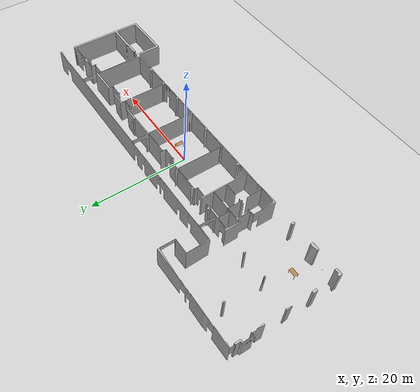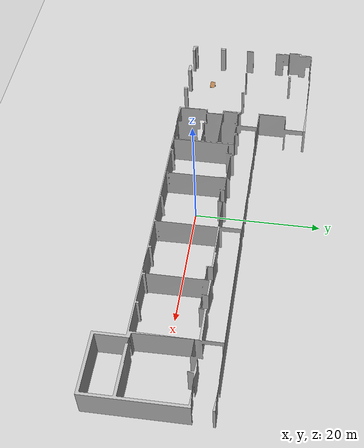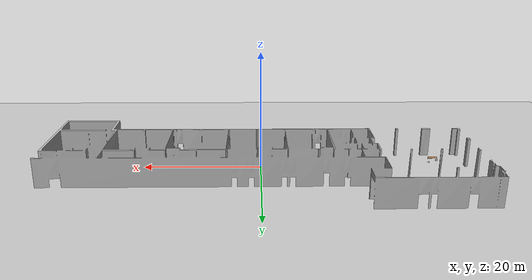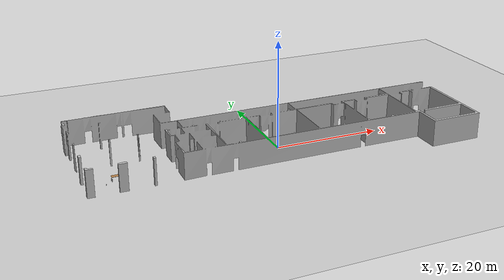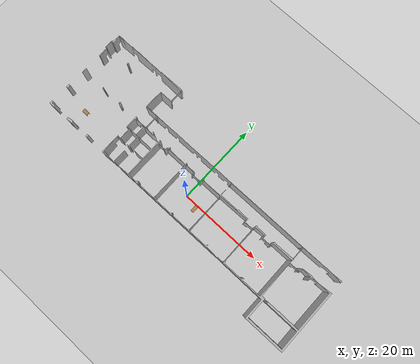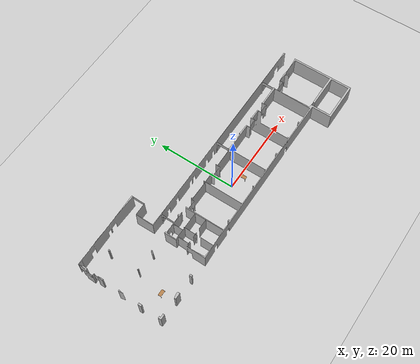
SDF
<sdf version="1.7">
 <world name="default">
  <light name="sun" type="directional">
   <pose>0 0 10 0 -0 0</pose>
   <diffuse>0.8 0.8 0.8 1</diffuse>
   <specular>0.2 0.2 0.2 1</specular>
   <attenuation>
    <range>1000</range>
    <constant>0.9</constant>
    <linear>0.01</linear>
    <quadratic>0.001</quadratic>
   </attenuation>
   <direction>-0.5 0.1 -0.9</direction>
   <spot><inner_angle>0</inner_angle><outer_angle>0</outer_angle><falloff>0</falloff></spot>
  </light>
  <model name="ground_plane">
   <static>1</static>
   <link name="link">
    <collision name="collision">
     <geometry><plane><normal>0 0 1</normal><size>100 100</size></plane></geometry>
     <surface>
      <contact><collide_bitmask>65535</collide_bitmask></contact>
      <friction><ode><mu>100</mu><mu2>50</mu2></ode></friction>
     </surface>
    </collision>
    <visual name="visual">
     <cast_shadows>0</cast_shadows>
     <geometry><plane><normal>0 0 1</normal><size>100 100</size></plane></geometry>
     <material>
      <script><uri>file://media/materials/scripts/gazebo.material</uri><name>Gazebo/Grey</name></script>
     </material>
    </visual>
   </link>
  </model>
  <gravity>0 0 -9.8</gravity>
  <magnetic_field>6e-06 2.3e-05 -4.2e-05</magnetic_field>
  <atmosphere type="adiabatic"/>
  <physics type="ode">
   <max_step_size>0.001</max_step_size>
   <real_time_factor>1</real_time_factor>
   <real_time_update_rate>1000</real_time_update_rate>
  </physics>
  <scene><ambient>0.4 0.4 0.4 1</ambient><background>0.7 0.7 0.7 1</background><shadows>1</shadows></scene>
  <spherical_coordinates>
   <surface_model>EARTH_WGS84</surface_model>
   <latitude_deg>0</latitude_deg>
   <longitude_deg>0</longitude_deg>
   <elevation>0</elevation>
   <heading_deg>0</heading_deg>
  </spherical_coordinates>
  <model name="campus_cham">
   <static>1</static>
   <link name="link_campus">
    <inertial>
     <mass>100000</mass>
     <inertia><ixx>1000</ixx><ixy>0</ixy><ixz>0</ixz><iyy>1000</iyy><iyz>0</iyz><izz>1000</izz></inertia>
    </inertial>
    <pose>0 0 0 1.57 -0 0</pose>
    <gravity>0</gravity>
    <visual name="visual">
     <geometry><mesh><uri>model://campus_cham/meshes/model.obj</uri><scale>1 1 1</scale></mesh></geometry>
    </visual>
    <collision name="collision">
     <geometry><mesh><uri>model://campus_cham/meshes/model.obj</uri><scale>1 1 1</scale></mesh></geometry>
     <surface>
      <friction>
       <ode><mu>1</mu><mu2>1</mu2><fdir1>0 0 0</fdir1><slip1>0</slip1><slip2>0</slip2></ode>
       <torsional>
        <coefficient>1</coefficient>
        <patch_radius>0</patch_radius>
        <surface_radius>0</surface_radius>
        <use_patch_radius>1</use_patch_radius>
        <ode><slip>0</slip></ode>
       </torsional>
      </friction>
      <bounce><restitution_coefficient>0</restitution_coefficient><threshold>1e+06</threshold></bounce>
      <contact>
       <collide_without_contact>0</collide_without_contact>
       <collide_without_contact_bitmask>1</collide_without_contact_bitmask>
       <collide_bitmask>1</collide_bitmask>
       <ode>
        <soft_cfm>0</soft_cfm>
        <soft_erp>0.2</soft_erp>
        <kp>1e+13</kp>
        <kd>1</kd>
        <max_vel>0.01</max_vel>
        <min_depth>0</min_depth>
       </ode>
       <bullet>
        <split_impulse>1</split_impulse>
        <split_impulse_penetration_threshold>-0.01</split_impulse_penetration_threshold>
        <soft_cfm>0</soft_cfm>
        <soft_erp>0.2</soft_erp>
        <kp>1e+13</kp>
        <kd>1</kd>
       </bullet>
      </contact>
     </surface>
    </collision>
   </link>
   <static>0</static>
   <pose>-0.042856 0.006303 -0.003452 0.006349 -0.000458 0.002201</pose>
  </model>
  <model name="table">
   <static>1</static>
   <link name="table0_link">
    <collision name="surface0">
     <pose>0 0 1 0 -0 0</pose>
     <geometry><box><size>1.5 0.8 0.03</size></box></geometry>
     <surface><friction><ode><mu>0.6</mu><mu2>0.6</mu2></ode></friction></surface>
    </collision>
    <visual name="visual0">
     <pose>0 0 1 0 -0 0</pose>
     <geometry><box><size>1.5 0.8 0.03</size></box></geometry>
     <material>
      <script><uri>file://media/materials/scripts/gazebo.material</uri><name>Gazebo/Wood</name></script>
     </material>
    </visual>
    <collision name="c_front_left_leg">
     <pose>0.68 0.38 0.5 0 -0 0</pose>
     <geometry><cylinder><radius>0.02</radius><length>1</length></cylinder></geometry>
    </collision>
    <visual name="v_front_left_leg">
     <pose>0.68 0.38 0.5 0 -0 0</pose>
     <geometry><cylinder><radius>0.02</radius><length>1</length></cylinder></geometry>
     <material>
      <script><uri>file://media/materials/scripts/gazebo.material</uri><name>Gazebo/Grey</name></script>
     </material>
    </visual>
    <collision name="c_front_right_leg">
     <pose>0.68 -0.38 0.5 0 -0 0</pose>
     <geometry><cylinder><radius>0.02</radius><length>1</length></cylinder></geometry>
    </collision>
    <visual name="v_front_right_leg">
     <pose>0.68 -0.38 0.5 0 -0 0</pose>
     <geometry><cylinder><radius>0.02</radius><length>1</length></cylinder></geometry>
     <material>
      <script><uri>file://media/materials/scripts/gazebo.material</uri><name>Gazebo/Grey</name></script>
     </material>
    </visual>
    <collision name="c_back_right_leg">
     <pose>-0.68 -0.38 0.5 0 -0 0</pose>
     <geometry><cylinder><radius>0.02</radius><length>1</length></cylinder></geometry>
    </collision>
    <visual name="v_back_right_leg">
     <pose>-0.68 -0.38 0.5 0 -0 0</pose>
     <geometry><cylinder><radius>0.02</radius><length>1</length></cylinder></geometry>
     <material>
      <script><uri>file://media/materials/scripts/gazebo.material</uri><name>Gazebo/Grey</name></script>
     </material>
    </visual>
    <collision name="c_back_left_leg">
     <pose>-0.68 0.38 0.5 0 -0 0</pose>
     <geometry><cylinder><radius>0.02</radius><length>1</length></cylinder></geometry>
    </collision>
    <visual name="v_back_left_leg">
     <pose>-0.68 0.38 0.5 0 -0 0</pose>
     <geometry><cylinder><radius>0.02</radius><length>1</length></cylinder></geometry>
     <material>
      <script><uri>file://media/materials/scripts/gazebo.material</uri><name>Gazebo/Grey</name></script>
     </material>
    </visual>
   </link>
   <pose>3.25 -1.0 0 0 0 -1.57</pose>
  </model>
  <model name="table_1">
   <static>1</static>
   <link name="table1_link">
    <collision name="t1_surface1">
     <pose>0 0 1 0 -0 0</pose>
     <geometry><box><size>1.5 0.8 0.03</size></box></geometry>
     <surface><friction><ode><mu>0.6</mu><mu2>0.6</mu2></ode></friction></surface>
    </collision>
    <visual name="t1_visual1">
     <pose>0 0 1 0 -0 0</pose>
     <geometry><box><size>1.5 0.8 0.03</size></box></geometry>
     <material>
      <script><uri>file://media/materials/scripts/gazebo.material</uri><name>Gazebo/Wood</name></script>
     </material>
    </visual>
    <collision name="t1c_front_left_leg">
     <pose>0.68 0.38 0.5 0 -0 0</pose>
     <geometry><cylinder><radius>0.02</radius><length>1</length></cylinder></geometry>
    </collision>
    <visual name="t1v_front_left_leg">
     <pose>0.68 0.38 0.5 0 -0 0</pose>
     <geometry><cylinder><radius>0.02</radius><length>1</length></cylinder></geometry>
     <material>
      <script><uri>file://media/materials/scripts/gazebo.material</uri><name>Gazebo/Grey</name></script>
     </material>
    </visual>
    <collision name="t1c_front_right_leg">
     <pose>0.68 -0.38 0.5 0 -0 0</pose>
     <geometry><cylinder><radius>0.02</radius><length>1</length></cylinder></geometry>
    </collision>
    <visual name="t1v_front_right_leg">
     <pose>0.68 -0.38 0.5 0 -0 0</pose>
     <geometry><cylinder><radius>0.02</radius><length>1</length></cylinder></geometry>
     <material>
      <script><uri>file://media/materials/scripts/gazebo.material</uri><name>Gazebo/Grey</name></script>
     </material>
    </visual>
    <collision name="t1c_back_right_leg">
     <pose>-0.68 -0.38 0.5 0 -0 0</pose>
     <geometry><cylinder><radius>0.02</radius><length>1</length></cylinder></geometry>
    </collision>
    <visual name="t1v_back_right_leg">
     <pose>-0.68 -0.38 0.5 0 -0 0</pose>
     <geometry><cylinder><radius>0.02</radius><length>1</length></cylinder></geometry>
     <material>
      <script><uri>file://media/materials/scripts/gazebo.material</uri><name>Gazebo/Grey</name></script>
     </material>
    </visual>
    <collision name="t1c_back_left_leg">
     <pose>-0.68 0.38 0.5 0 -0 0</pose>
     <geometry><cylinder><radius>0.02</radius><length>1</length></cylinder></geometry>
    </collision>
    <visual name="t1v_back_left_leg">
     <pose>-0.68 0.38 0.5 0 -0 0</pose>
     <geometry><cylinder><radius>0.02</radius><length>1</length></cylinder></geometry>
     <material>
      <script><uri>file://media/materials/scripts/gazebo.material</uri><name>Gazebo/Grey</name></script>
     </material>
    </visual>
   </link>
   <pose>-30 -1.5 0 0 -0 0</pose>
  </model>
 </world>
</sdf>
